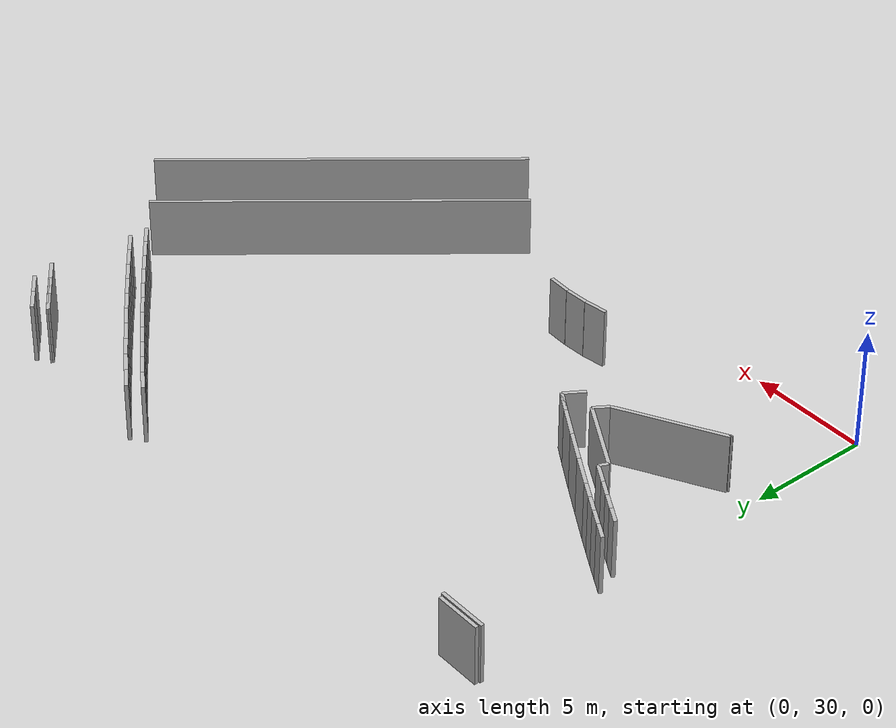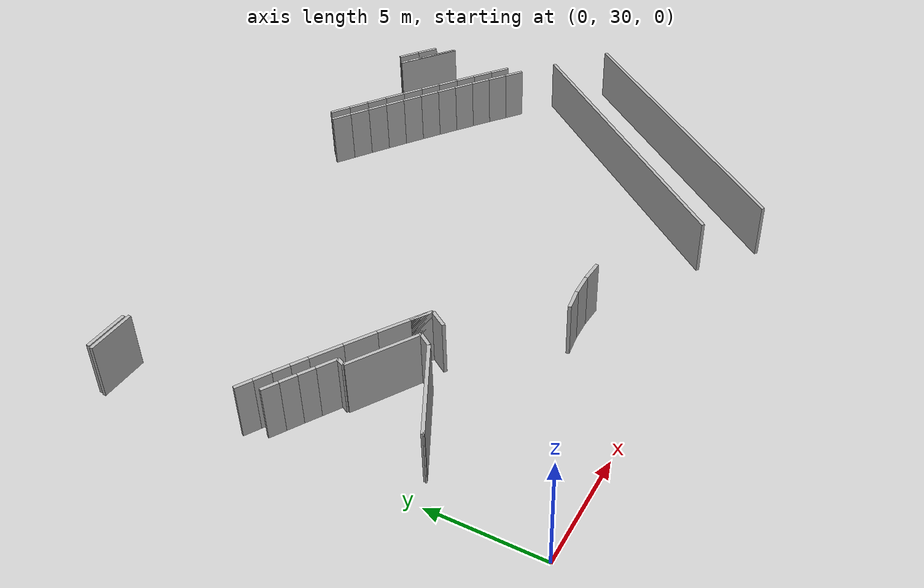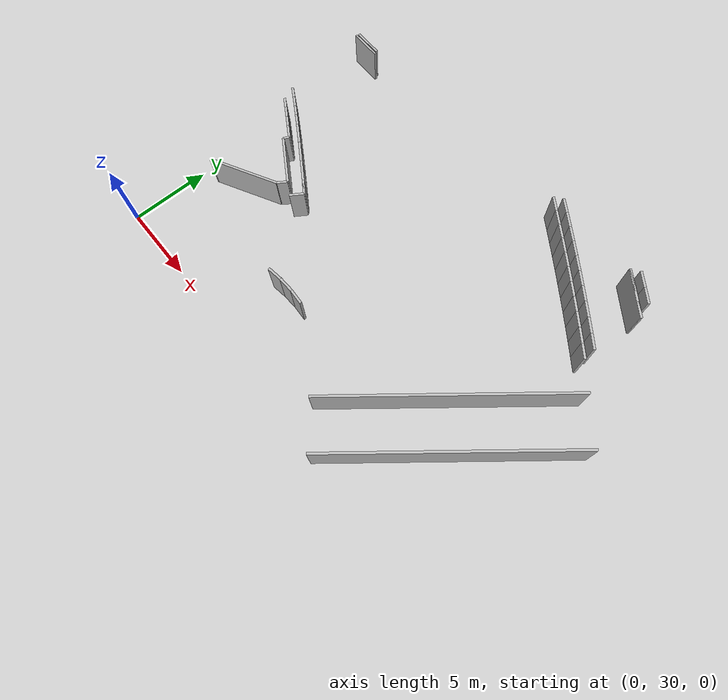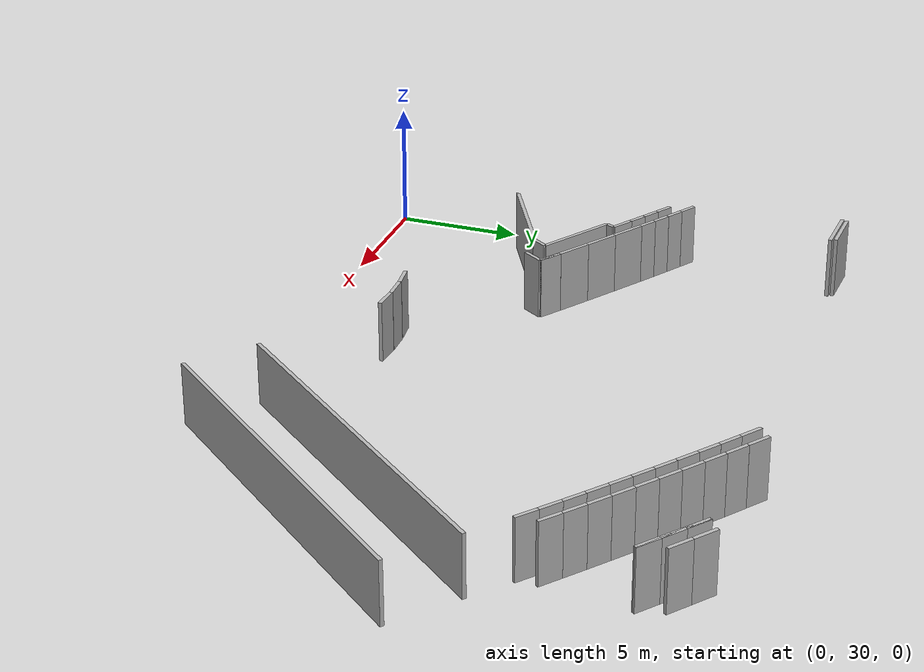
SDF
<sdf version="1.6">
 <model name="sps_0605">
  <static>1</static>
  <allow_auto_disable>0</allow_auto_disable>
  <link name="Wall129">
   <collision name="collision"><geometry><box><size>15.0006 0.15 2.5</size></box></geometry></collision>
   <visual name="visual">
    <geometry><box><size>15.0006 0.15 2.5</size></box></geometry>
    <transparency>0.0</transparency>
   </visual>
   <pose>24.007 34.8648 1.25 0 0 -2.25896</pose>
  </link>
  <link name="Wall503">
   <collision name="collision"><geometry><box><size>1.92365 0.15 2.5</size></box></geometry></collision>
   <visual name="visual">
    <geometry><box><size>1.92365 0.15 2.5</size></box></geometry>
    <transparency>0.0</transparency>
   </visual>
   <pose>0.09246 48.9816 1.25 0 -0 3.11903</pose>
  </link>
  <link name="Wall843">
   <collision name="collision"><geometry><box><size>4.51436 0.15 2.5</size></box></geometry></collision>
   <visual name="visual">
    <geometry><box><size>4.51436 0.15 2.5</size></box></geometry>
    <transparency>0.0</transparency>
   </visual>
   <pose>3.09734 36.5783 1.25 0 0 -2.66025</pose>
  </link>
  <link name="Wall1541">
   <collision name="collision"><geometry><box><size>2.09372 0.15 2.5</size></box></geometry></collision>
   <visual name="visual">
    <geometry><box><size>2.09372 0.15 2.5</size></box></geometry>
    <transparency>0.0</transparency>
   </visual>
   <pose>0.123466 48.781 1.25 0 -0 3.11935</pose>
  </link>
  <link name="Wall1851">
   <collision name="collision"><geometry><box><size>0.060937 0.15 2.5</size></box></geometry></collision>
   <visual name="visual">
    <geometry><box><size>0.060937 0.15 2.5</size></box></geometry>
    <transparency>0.0</transparency>
   </visual>
   <pose>1.11135 35.5067 1.25 0 0 -1.0601</pose>
  </link>
  <link name="Wall1858">
   <collision name="collision"><geometry><box><size>14.981 0.15 2.5</size></box></geometry></collision>
   <visual name="visual">
    <geometry><box><size>14.981 0.15 2.5</size></box></geometry>
    <transparency>0.0</transparency>
   </visual>
   <pose>21.6967 36.778 1.25 0 0 -2.25893</pose>
  </link>
  <link name="Wall2194">
   <collision name="collision"><geometry><box><size>0.910391 0.15 2.5</size></box></geometry></collision>
   <visual name="visual">
    <geometry><box><size>0.910391 0.15 2.5</size></box></geometry>
    <transparency>0.0</transparency>
   </visual>
   <pose>2.49227 40.4786 1.25 0 0 -0.553596</pose>
  </link>
  <link name="Wall2200">
   <collision name="collision"><geometry><box><size>3.03822 0.15 2.5</size></box></geometry></collision>
   <visual name="visual">
    <geometry><box><size>3.03822 0.15 2.5</size></box></geometry>
    <transparency>0.0</transparency>
   </visual>
   <pose>24.1541 48.8026 1.25 0 0 -0.643051</pose>
  </link>
  <link name="Wall2583">
   <collision name="collision"><geometry><box><size>0.907783 0.15 2.5</size></box></geometry></collision>
   <visual name="visual">
    <geometry><box><size>0.907783 0.15 2.5</size></box></geometry>
    <transparency>0.0</transparency>
   </visual>
   <pose>6.55437 38.0564 1.25 0 -0 0.990943</pose>
  </link>
  <link name="Wall2584">
   <collision name="collision"><geometry><box><size>0.981156 0.15 2.5</size></box></geometry></collision>
   <visual name="visual">
    <geometry><box><size>0.981156 0.15 2.5</size></box></geometry>
    <transparency>0.0</transparency>
   </visual>
   <pose>6.39425 38.7073 1.25 0 -0 2.5559</pose>
  </link>
  <link name="Wall2585">
   <collision name="collision"><geometry><box><size>0.981156 0.15 2.5</size></box></geometry></collision>
   <visual name="visual">
    <geometry><box><size>0.981156 0.15 2.5</size></box></geometry>
    <transparency>0.0</transparency>
   </visual>
   <pose>6.39425 38.7073 1.25 0 0 -0.585691</pose>
  </link>
  <link name="Wall6981">
   <collision name="collision"><geometry><box><size>1.41052 0.15 2.5</size></box></geometry></collision>
   <visual name="visual">
    <geometry><box><size>1.41052 0.15 2.5</size></box></geometry>
    <transparency>0.0</transparency>
   </visual>
   <pose>5.39144 39.3587 1.25 0 -0 2.57221</pose>
  </link>
  <link name="Wall6982">
   <collision name="collision"><geometry><box><size>1.41024 0.15 2.5</size></box></geometry></collision>
   <visual name="visual">
    <geometry><box><size>1.41024 0.15 2.5</size></box></geometry>
    <transparency>0.0</transparency>
   </visual>
   <pose>4.20156 40.1159 1.25 0 -0 2.57752</pose>
  </link>
  <link name="Wall6983">
   <collision name="collision"><geometry><box><size>1.4105 0.15 2.5</size></box></geometry></collision>
   <visual name="visual">
    <geometry><box><size>1.4105 0.15 2.5</size></box></geometry>
    <transparency>0.0</transparency>
   </visual>
   <pose>3.00777 40.8669 1.25 0 -0 2.58259</pose>
  </link>
  <link name="Wall6984">
   <collision name="collision"><geometry><box><size>0.737329 0.15 2.5</size></box></geometry></collision>
   <visual name="visual">
    <geometry><box><size>0.737329 0.15 2.5</size></box></geometry>
    <transparency>0.0</transparency>
   </visual>
   <pose>2.09557 41.4336 1.25 0 -0 2.59162</pose>
  </link>
  <link name="Wall6985">
   <collision name="collision"><geometry><box><size>0.73724 0.15 2.5</size></box></geometry></collision>
   <visual name="visual">
    <geometry><box><size>0.73724 0.15 2.5</size></box></geometry>
    <transparency>0.0</transparency>
   </visual>
   <pose>1.46606 41.8174 1.25 0 -0 2.59659</pose>
  </link>
  <link name="Wall6986">
   <collision name="collision"><geometry><box><size>0.7374 0.15 2.5</size></box></geometry></collision>
   <visual name="visual">
    <geometry><box><size>0.7374 0.15 2.5</size></box></geometry>
    <transparency>0.0</transparency>
   </visual>
   <pose>0.834556 42.198 1.25 0 -0 2.60184</pose>
  </link>
  <link name="Wall6987">
   <collision name="collision"><geometry><box><size>0.737256 0.15 2.5</size></box></geometry></collision>
   <visual name="visual">
    <geometry><box><size>0.737256 0.15 2.5</size></box></geometry>
    <transparency>0.0</transparency>
   </visual>
   <pose>0.201072 42.5753 1.25 0 -0 2.60702</pose>
  </link>
  <link name="Wall7123">
   <collision name="collision"><geometry><box><size>1.01997 0.15 2.5</size></box></geometry></collision>
   <visual name="visual">
    <geometry><box><size>1.01997 0.15 2.5</size></box></geometry>
    <transparency>0.0</transparency>
   </visual>
   <pose>24.6709 49.1708 1.25 0 -0 2.4974</pose>
  </link>
  <link name="Wall7124">
   <collision name="collision"><geometry><box><size>1.02014 0.15 2.5</size></box></geometry></collision>
   <visual name="visual">
    <geometry><box><size>1.02014 0.15 2.5</size></box></geometry>
    <transparency>0.0</transparency>
   </visual>
   <pose>23.8534 49.7809 1.25 0 -0 2.50357</pose>
  </link>
  <link name="Wall9648">
   <collision name="collision"><geometry><box><size>0.971937 0.15 2.5</size></box></geometry></collision>
   <visual name="visual">
    <geometry><box><size>0.971937 0.15 2.5</size></box></geometry>
    <transparency>0.0</transparency>
   </visual>
   <pose>9.98016 33.8886 1.25 0 -0 0.132323</pose>
  </link>
  <link name="Wall9649">
   <collision name="collision"><geometry><box><size>0.971821 0.15 2.5</size></box></geometry></collision>
   <visual name="visual">
    <geometry><box><size>0.971821 0.15 2.5</size></box></geometry>
    <transparency>0.0</transparency>
   </visual>
   <pose>10.9475 33.9702 1.25 0 -0 0.035995</pose>
  </link>
  <link name="Wall9650">
   <collision name="collision"><geometry><box><size>0.971983 0.15 2.5</size></box></geometry></collision>
   <visual name="visual">
    <geometry><box><size>0.971983 0.15 2.5</size></box></geometry>
    <transparency>0.0</transparency>
   </visual>
   <pose>11.9182 33.9584 1.25 0 0 -0.0603193</pose>
  </link>
  <link name="Wall13070">
   <collision name="collision"><geometry><box><size>1.01288 0.15 2.5</size></box></geometry></collision>
   <visual name="visual">
    <geometry><box><size>1.01288 0.15 2.5</size></box></geometry>
    <transparency>0.0</transparency>
   </visual>
   <pose>24.9665 48.1979 1.25 0 -0 2.49228</pose>
  </link>
  <link name="Wall13071">
   <collision name="collision"><geometry><box><size>1.01265 0.15 2.5</size></box></geometry></collision>
   <visual name="visual">
    <geometry><box><size>1.01265 0.15 2.5</size></box></geometry>
    <transparency>0.0</transparency>
   </visual>
   <pose>24.1579 48.8077 1.25 0 -0 2.4986</pose>
  </link>
  <link name="Wall13072">
   <collision name="collision"><geometry><box><size>1.01273 0.15 2.5</size></box></geometry></collision>
   <visual name="visual">
    <geometry><box><size>1.01273 0.15 2.5</size></box></geometry>
    <transparency>0.0</transparency>
   </visual>
   <pose>23.3455 49.4124 1.25 0 -0 2.50475</pose>
  </link>
  <link name="Wall16737">
   <collision name="collision"><geometry><box><size>0.729144 0.15 2.5</size></box></geometry></collision>
   <visual name="visual">
    <geometry><box><size>0.729144 0.15 2.5</size></box></geometry>
    <transparency>0.0</transparency>
   </visual>
   <pose>1.79427 40.9085 1.25 0 -0 2.59151</pose>
  </link>
  <link name="Wall16738">
   <collision name="collision"><geometry><box><size>0.729181 0.15 2.5</size></box></geometry></collision>
   <visual name="visual">
    <geometry><box><size>0.729181 0.15 2.5</size></box></geometry>
    <transparency>0.0</transparency>
   </visual>
   <pose>1.17178 41.2882 1.25 0 -0 2.59625</pose>
  </link>
  <link name="Wall16739">
   <collision name="collision"><geometry><box><size>0.729267 0.15 2.5</size></box></geometry></collision>
   <visual name="visual">
    <geometry><box><size>0.729267 0.15 2.5</size></box></geometry>
    <transparency>0.0</transparency>
   </visual>
   <pose>0.547263 41.6647 1.25 0 -0 2.60189</pose>
  </link>
  <link name="Wall25096">
   <collision name="collision"><geometry><box><size>0.38379 0.15 2.5</size></box></geometry></collision>
   <visual name="visual">
    <geometry><box><size>0.38379 0.15 2.5</size></box></geometry>
    <transparency>0.0</transparency>
   </visual>
   <pose>2.79748 40.0658 1.25 0 0 -2.01232</pose>
  </link>
  <link name="Wall25097">
   <collision name="collision"><geometry><box><size>3.2442 0.15 2.5</size></box></geometry></collision>
   <visual name="visual">
    <geometry><box><size>3.2442 0.15 2.5</size></box></geometry>
    <transparency>0.0</transparency>
   </visual>
   <pose>4.09457 39.0383 1.25 0 0 -0.554455</pose>
  </link>
  <link name="Wall25098">
   <collision name="collision"><geometry><box><size>0.675111 0.15 2.5</size></box></geometry></collision>
   <visual name="visual">
    <geometry><box><size>0.675111 0.15 2.5</size></box></geometry>
    <transparency>0.0</transparency>
   </visual>
   <pose>5.28585 37.9038 1.25 0 0 -2.1608</pose>
  </link>
  <link name="Wall25101">
   <collision name="collision"><geometry><box><size>0.93404 0.15 2.5</size></box></geometry></collision>
   <visual name="visual">
    <geometry><box><size>0.93404 0.15 2.5</size></box></geometry>
    <transparency>0.0</transparency>
   </visual>
   <pose>24.6246 44.016 1.25 0 -0 2.47792</pose>
  </link>
  <link name="Wall25102">
   <collision name="collision"><geometry><box><size>0.934384 0.15 2.5</size></box></geometry></collision>
   <visual name="visual">
    <geometry><box><size>0.934384 0.15 2.5</size></box></geometry>
    <transparency>0.0</transparency>
   </visual>
   <pose>23.887 44.5893 1.25 0 -0 2.48384</pose>
  </link>
  <link name="Wall25103">
   <collision name="collision"><geometry><box><size>0.934029 0.15 2.5</size></box></geometry></collision>
   <visual name="visual">
    <geometry><box><size>0.934029 0.15 2.5</size></box></geometry>
    <transparency>0.0</transparency>
   </visual>
   <pose>23.146 45.1582 1.25 0 -0 2.48981</pose>
  </link>
  <link name="Wall25104">
   <collision name="collision"><geometry><box><size>0.934292 0.15 2.5</size></box></geometry></collision>
   <visual name="visual">
    <geometry><box><size>0.934292 0.15 2.5</size></box></geometry>
    <transparency>0.0</transparency>
   </visual>
   <pose>22.4017 45.7227 1.25 0 -0 2.4956</pose>
  </link>
  <link name="Wall25105">
   <collision name="collision"><geometry><box><size>0.934161 0.15 2.5</size></box></geometry></collision>
   <visual name="visual">
    <geometry><box><size>0.934161 0.15 2.5</size></box></geometry>
    <transparency>0.0</transparency>
   </visual>
   <pose>21.654 46.2829 1.25 0 -0 2.50145</pose>
  </link>
  <link name="Wall25106">
   <collision name="collision"><geometry><box><size>0.934136 0.15 2.5</size></box></geometry></collision>
   <visual name="visual">
    <geometry><box><size>0.934136 0.15 2.5</size></box></geometry>
    <transparency>0.0</transparency>
   </visual>
   <pose>20.9032 46.8386 1.25 0 -0 2.50753</pose>
  </link>
  <link name="Wall25107">
   <collision name="collision"><geometry><box><size>0.934154 0.15 2.5</size></box></geometry></collision>
   <visual name="visual">
    <geometry><box><size>0.934154 0.15 2.5</size></box></geometry>
    <transparency>0.0</transparency>
   </visual>
   <pose>20.149 47.3898 1.25 0 -0 2.51337</pose>
  </link>
  <link name="Wall25108">
   <collision name="collision"><geometry><box><size>0.934318 0.15 2.5</size></box></geometry></collision>
   <visual name="visual">
    <geometry><box><size>0.934318 0.15 2.5</size></box></geometry>
    <transparency>0.0</transparency>
   </visual>
   <pose>19.3915 47.9366 1.25 0 -0 2.51938</pose>
  </link>
  <link name="Wall25109">
   <collision name="collision"><geometry><box><size>0.93399 0.15 2.5</size></box></geometry></collision>
   <visual name="visual">
    <geometry><box><size>0.93399 0.15 2.5</size></box></geometry>
    <transparency>0.0</transparency>
   </visual>
   <pose>18.6308 48.4788 1.25 0 -0 2.52538</pose>
  </link>
  <link name="Wall25110">
   <collision name="collision"><geometry><box><size>0.934257 0.15 2.5</size></box></geometry></collision>
   <visual name="visual">
    <geometry><box><size>0.934257 0.15 2.5</size></box></geometry>
    <transparency>0.0</transparency>
   </visual>
   <pose>17.8668 49.0164 1.25 0 -0 2.53134</pose>
  </link>
  <link name="Wall25111">
   <collision name="collision"><geometry><box><size>0.934251 0.15 2.5</size></box></geometry></collision>
   <visual name="visual">
    <geometry><box><size>0.934251 0.15 2.5</size></box></geometry>
    <transparency>0.0</transparency>
   </visual>
   <pose>17.0996 49.5495 1.25 0 -0 2.5373</pose>
  </link>
  <link name="Wall25129">
   <collision name="collision"><geometry><box><size>0.96409 0.15 2.5</size></box></geometry></collision>
   <visual name="visual">
    <geometry><box><size>0.96409 0.15 2.5</size></box></geometry>
    <transparency>0.0</transparency>
   </visual>
   <pose>24.5807 44.8106 1.25 0 -0 2.48124</pose>
  </link>
  <link name="Wall25130">
   <collision name="collision"><geometry><box><size>0.96395 0.15 2.5</size></box></geometry></collision>
   <visual name="visual">
    <geometry><box><size>0.96395 0.15 2.5</size></box></geometry>
    <transparency>0.0</transparency>
   </visual>
   <pose>23.8176 45.3997 1.25 0 -0 2.48712</pose>
  </link>
  <link name="Wall25131">
   <collision name="collision"><geometry><box><size>0.964122 0.15 2.5</size></box></geometry></collision>
   <visual name="visual">
    <geometry><box><size>0.964122 0.15 2.5</size></box></geometry>
    <transparency>0.0</transparency>
   </visual>
   <pose>23.051 45.9841 1.25 0 -0 2.49347</pose>
  </link>
  <link name="Wall25132">
   <collision name="collision"><geometry><box><size>0.96421 0.15 2.5</size></box></geometry></collision>
   <visual name="visual">
    <geometry><box><size>0.96421 0.15 2.5</size></box></geometry>
    <transparency>0.0</transparency>
   </visual>
   <pose>22.2805 46.5638 1.25 0 -0 2.49956</pose>
  </link>
  <link name="Wall25133">
   <collision name="collision"><geometry><box><size>0.964029 0.15 2.5</size></box></geometry></collision>
   <visual name="visual">
    <geometry><box><size>0.964029 0.15 2.5</size></box></geometry>
    <transparency>0.0</transparency>
   </visual>
   <pose>21.5066 47.1388 1.25 0 -0 2.50565</pose>
  </link>
  <link name="Wall25134">
   <collision name="collision"><geometry><box><size>0.964113 0.15 2.5</size></box></geometry></collision>
   <visual name="visual">
    <geometry><box><size>0.964113 0.15 2.5</size></box></geometry>
    <transparency>0.0</transparency>
   </visual>
   <pose>20.7294 47.7091 1.25 0 -0 2.51153</pose>
  </link>
  <link name="Wall25135">
   <collision name="collision"><geometry><box><size>0.964165 0.15 2.5</size></box></geometry></collision>
   <visual name="visual">
    <geometry><box><size>0.964165 0.15 2.5</size></box></geometry>
    <transparency>0.0</transparency>
   </visual>
   <pose>19.9486 48.2747 1.25 0 -0 2.51782</pose>
  </link>
  <link name="Wall25136">
   <collision name="collision"><geometry><box><size>0.964027 0.15 2.5</size></box></geometry></collision>
   <visual name="visual">
    <geometry><box><size>0.964027 0.15 2.5</size></box></geometry>
    <transparency>0.0</transparency>
   </visual>
   <pose>19.1644 48.8355 1.25 0 -0 2.52379</pose>
  </link>
  <link name="Wall25137">
   <collision name="collision"><geometry><box><size>0.964138 0.15 2.5</size></box></geometry></collision>
   <visual name="visual">
    <geometry><box><size>0.964138 0.15 2.5</size></box></geometry>
    <transparency>0.0</transparency>
   </visual>
   <pose>18.3768 49.3915 1.25 0 -0 2.52999</pose>
  </link>
  <link name="Wall25138">
   <collision name="collision"><geometry><box><size>0.964132 0.15 2.5</size></box></geometry></collision>
   <visual name="visual">
    <geometry><box><size>0.964132 0.15 2.5</size></box></geometry>
    <transparency>0.0</transparency>
   </visual>
   <pose>17.5857 49.9426 1.25 0 -0 2.53631</pose>
  </link>
 </model>
</sdf>
